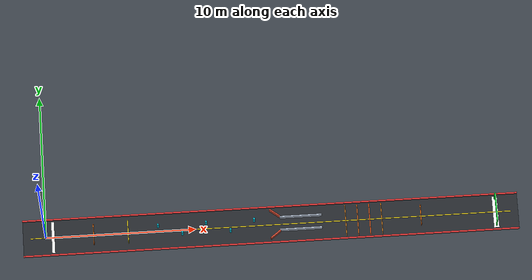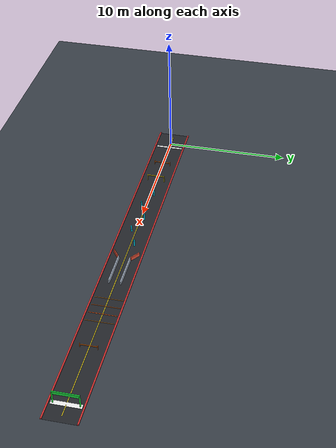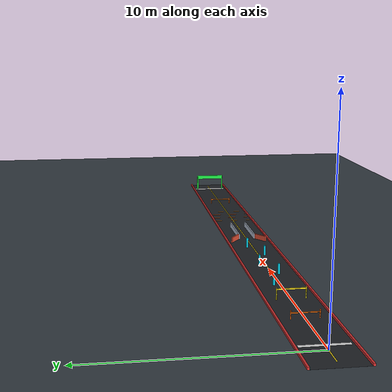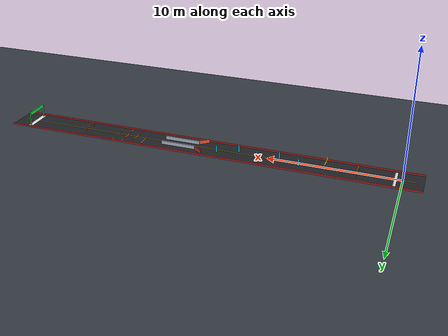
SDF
<?xml version="1.0" ?>
<sdf version="1.8">
  <world name="wobble_hurdle_course">
    <physics name="1ms" type="ignored">
      <max_step_size>0.001</max_step_size>
      <real_time_factor>1.0</real_time_factor>
    </physics>

    <!-- Essential Gazebo Harmonic plugins -->
    <plugin filename="gz-sim-physics-system" name="gz::sim::systems::Physics"/>
    <plugin filename="gz-sim-user-commands-system" name="gz::sim::systems::UserCommands"/>
    <plugin filename="gz-sim-scene-broadcaster-system" name="gz::sim::systems::SceneBroadcaster"/>
    <plugin filename="gz-sim-sensors-system" name="gz::sim::systems::Sensors">
      <render_engine>ogre2</render_engine>
    </plugin>

    <!-- Sun light -->
    <light type="directional" name="sun">
      <cast_shadows>true</cast_shadows>
      <pose>0 0 20 0 0 0</pose>
      <diffuse>0.9 0.9 0.9 1</diffuse>
      <specular>0.3 0.3 0.3 1</specular>
      <direction>-0.5 0.2 -0.8</direction>
    </light>

    <!-- Ground Plane -->
    <model name="ground_plane">
      <static>true</static>
      <link name="link">
        <collision name="collision">
          <geometry>
            <plane>
              <normal>0 0 1</normal>
              <size>120 120</size>
            </plane>
          </geometry>
          <surface>
            <friction>
              <ode>
                <mu>1.5</mu>
                <mu2>1.5</mu2>
              </ode>
            </friction>
          </surface>
        </collision>
        <visual name="visual">
          <geometry>
            <plane>
              <normal>0 0 1</normal>
              <size>120 120</size>
            </plane>
          </geometry>
          <material>
            <ambient>0.22 0.25 0.28 1</ambient>
            <diffuse>0.22 0.25 0.28 1</diffuse>
            <specular>0.1 0.1 0.1 1</specular>
          </material>
        </visual>
      </link>
    </model>

    <!-- Course Track Floor (32m x 2.4m asphalt championship lane) -->
    <model name="course_track">
      <static>true</static>
      <pose>15.0 0 0.001 0 0 0</pose>
      <link name="link">
        <visual name="track_surface">
          <geometry>
            <box><size>33.0 2.4 0.002</size></box>
          </geometry>
          <material>
            <ambient>0.14 0.15 0.17 1</ambient>
            <diffuse>0.14 0.15 0.17 1</diffuse>
          </material>
        </visual>
        <!-- Center guidance line (Yellow) -->
        <visual name="center_line">
          <pose>0 0 0.002 0 0 0</pose>
          <geometry>
            <box><size>32.0 0.06 0.002</size></box>
          </geometry>
          <material>
            <ambient>0.95 0.85 0.1 1</ambient>
            <diffuse>0.95 0.85 0.1 1</diffuse>
          </material>
        </visual>
        <!-- Start marker line -->
        <visual name="start_line">
          <pose>-14.5 0 0.002 0 0 0</pose>
          <geometry>
            <box><size>0.2 2.2 0.002</size></box>
          </geometry>
          <material>
            <ambient>0.9 0.9 0.9 1</ambient>
            <diffuse>0.9 0.9 0.9 1</diffuse>
          </material>
        </visual>
      </link>
    </model>

    <!-- Boundary Rails (Left & Right safety curbs) -->
    <model name="boundary_rails">
      <static>true</static>
      <link name="link">
        <collision name="rail_left_col">
          <pose>15.0 1.25 0.05 0 0 0</pose>
          <geometry><box><size>33.0 0.1 0.1</size></box></geometry>
        </collision>
        <visual name="rail_left_vis">
          <pose>15.0 1.25 0.05 0 0 0</pose>
          <geometry><box><size>33.0 0.1 0.1</size></box></geometry>
          <material>
            <ambient>0.85 0.2 0.2 1</ambient>
            <diffuse>0.85 0.2 0.2 1</diffuse>
          </material>
        </visual>
        <collision name="rail_right_col">
          <pose>15.0 -1.25 0.05 0 0 0</pose>
          <geometry><box><size>33.0 0.1 0.1</size></box></geometry>
        </collision>
        <visual name="rail_right_vis">
          <pose>15.0 -1.25 0.05 0 0 0</pose>
          <geometry><box><size>33.0 0.1 0.1</size></box></geometry>
          <material>
            <ambient>0.85 0.2 0.2 1</ambient>
            <diffuse>0.85 0.2 0.2 1</diffuse>
          </material>
        </visual>
      </link>
    </model>

    <!-- STAGE 2: Low-Clearance Overhead Hurdle 1 (X = 3.2m)                        -->
    <!-- Requires Deep Squat Posture (theta = -0.55 rad) to glide under 26.5cm bar -->
    <model name="hurdle_stage_1">
      <static>true</static>
      <link name="link">
        <!-- Left vertical post -->
        <collision name="post_left_col">
          <pose>3.2 0.65 0.20 0 0 0</pose>
          <geometry><cylinder><radius>0.025</radius><length>0.40</length></cylinder></geometry>
        </collision>
        <visual name="post_left_vis">
          <pose>3.2 0.65 0.20 0 0 0</pose>
          <geometry><cylinder><radius>0.025</radius><length>0.40</length></cylinder></geometry>
          <material><ambient>0.95 0.40 0.05 1</ambient><diffuse>0.95 0.40 0.05 1</diffuse></material>
        </visual>

        <!-- Right vertical post -->
        <collision name="post_right_col">
          <pose>3.2 -0.65 0.20 0 0 0</pose>
          <geometry><cylinder><radius>0.025</radius><length>0.40</length></cylinder></geometry>
        </collision>
        <visual name="post_right_vis">
          <pose>3.2 -0.65 0.20 0 0 0</pose>
          <geometry><cylinder><radius>0.025</radius><length>0.40</length></cylinder></geometry>
          <material><ambient>0.95 0.40 0.05 1</ambient><diffuse>0.95 0.40 0.05 1</diffuse></material>
        </visual>

        <!-- Overhead horizontal crossbar (lower edge at Z = 0.265m) -->
        <collision name="crossbar_col">
          <pose>3.2 0 0.285 0 0 0</pose>
          <geometry><box><size>0.05 1.35 0.04</size></box></geometry>
        </collision>
        <visual name="crossbar_vis">
          <pose>3.2 0 0.285 0 0 0</pose>
          <geometry><box><size>0.05 1.35 0.04</size></box></geometry>
          <material><ambient>0.98 0.45 0.05 1</ambient><diffuse>0.98 0.45 0.05 1</diffuse></material>
        </visual>
      </link>
    </model>

    <!-- STAGE 3: Elevated Standing Posture Speed Gate (X = 5.5m)                  -->
    <!-- Requires robot to rise back to full upright posture (theta = 0.0 rad)     -->
    <model name="speed_gate">
      <static>true</static>
      <link name="link">
        <!-- Left Post -->
        <collision name="sg_left_col">
          <pose>5.5 0.70 0.30 0 0 0</pose>
          <geometry><cylinder><radius>0.025</radius><length>0.60</length></cylinder></geometry>
        </collision>
        <visual name="sg_left_vis">
          <pose>5.5 0.70 0.30 0 0 0</pose>
          <geometry><cylinder><radius>0.025</radius><length>0.60</length></cylinder></geometry>
          <material><ambient>0.9 0.85 0.1 1</ambient><diffuse>0.9 0.85 0.1 1</diffuse></material>
        </visual>

        <!-- Right Post -->
        <collision name="sg_right_col">
          <pose>5.5 -0.70 0.30 0 0 0</pose>
          <geometry><cylinder><radius>0.025</radius><length>0.60</length></cylinder></geometry>
        </collision>
        <visual name="sg_right_vis">
          <pose>5.5 -0.70 0.30 0 0 0</pose>
          <geometry><cylinder><radius>0.025</radius><length>0.60</length></cylinder></geometry>
          <material><ambient>0.9 0.85 0.1 1</ambient><diffuse>0.9 0.85 0.1 1</diffuse></material>
        </visual>

        <!-- Elevated Yellow Header (Z = 0.50m) -->
        <visual name="sg_header_vis">
          <pose>5.5 0 0.52 0 0 0</pose>
          <geometry><box><size>0.06 1.45 0.06</size></box></geometry>
          <material><ambient>0.95 0.85 0.1 1</ambient><diffuse>0.95 0.85 0.1 1</diffuse></material>
        </visual>
      </link>
    </model>

    <!-- STAGE 4: 5-Gate Championship Slalom Arena (X = 7.0m to 15.0m)             -->
    <!-- 5 Cyan bollards spaced 1.6m apart alternating Y = +/- 0.32m               -->
    <!-- Bollard 1: X = 7.5m, Y = +0.32m (Pass to Right) -->
    <model name="slalom_bollard_1">
      <static>true</static>
      <pose>7.5 0.32 0.275 0 0 0</pose>
      <link name="link">
        <collision name="col"><geometry><cylinder><radius>0.06</radius><length>0.55</length></cylinder></geometry></collision>
        <visual name="vis">
          <geometry><cylinder><radius>0.06</radius><length>0.55</length></cylinder></geometry>
          <material><ambient>0.0 0.75 0.85 1</ambient><diffuse>0.0 0.75 0.85 1</diffuse></material>
        </visual>
      </link>
    </model>

    <!-- Bollard 2: X = 9.1m, Y = -0.32m (Pass to Left) -->
    <model name="slalom_bollard_2">
      <static>true</static>
      <pose>9.1 -0.32 0.275 0 0 0</pose>
      <link name="link">
        <collision name="col"><geometry><cylinder><radius>0.06</radius><length>0.55</length></cylinder></geometry></collision>
        <visual name="vis">
          <geometry><cylinder><radius>0.06</radius><length>0.55</length></cylinder></geometry>
          <material><ambient>0.0 0.75 0.85 1</ambient><diffuse>0.0 0.75 0.85 1</diffuse></material>
        </visual>
      </link>
    </model>

    <!-- Bollard 3: X = 10.7m, Y = +0.32m (Pass to Right) -->
    <model name="slalom_bollard_3">
      <static>true</static>
      <pose>10.7 0.32 0.275 0 0 0</pose>
      <link name="link">
        <collision name="col"><geometry><cylinder><radius>0.06</radius><length>0.55</length></cylinder></geometry></collision>
        <visual name="vis">
          <geometry><cylinder><radius>0.06</radius><length>0.55</length></cylinder></geometry>
          <material><ambient>0.0 0.75 0.85 1</ambient><diffuse>0.0 0.75 0.85 1</diffuse></material>
        </visual>
      </link>
    </model>

    <!-- Bollard 4: X = 12.3m, Y = -0.32m (Pass to Left) -->
    <model name="slalom_bollard_4">
      <static>true</static>
      <pose>12.3 -0.32 0.275 0 0 0</pose>
      <link name="link">
        <collision name="col"><geometry><cylinder><radius>0.06</radius><length>0.55</length></cylinder></geometry></collision>
        <visual name="vis">
          <geometry><cylinder><radius>0.06</radius><length>0.55</length></cylinder></geometry>
          <material><ambient>0.0 0.75 0.85 1</ambient><diffuse>0.0 0.75 0.85 1</diffuse></material>
        </visual>
      </link>
    </model>

    <!-- Bollard 5: X = 13.9m, Y = +0.32m (Pass to Right) -->
    <model name="slalom_bollard_5">
      <static>true</static>
      <pose>13.9 0.32 0.275 0 0 0</pose>
      <link name="link">
        <collision name="col"><geometry><cylinder><radius>0.06</radius><length>0.55</length></cylinder></geometry></collision>
        <visual name="vis">
          <geometry><cylinder><radius>0.06</radius><length>0.55</length></cylinder></geometry>
          <material><ambient>0.0 0.75 0.85 1</ambient><diffuse>0.0 0.75 0.85 1</diffuse></material>
        </visual>
      </link>
    </model>

    <!-- STAGE 5: Precision Canyon / Squeeze Corridor (X = 15.5m to 18.5m)        -->
    <!-- Tapered safety barriers narrowing to 0.90m corridor                       -->
    <model name="precision_canyon">
      <static>true</static>
      <link name="link">
        <!-- Left Straight Wall (Y = +0.45m, corridor width 0.90m) -->
        <collision name="canyon_l_col">
          <pose>17.0 0.45 0.15 0 0 0</pose>
          <geometry><box><size>2.8 0.08 0.30</size></box></geometry>
        </collision>
        <visual name="canyon_l_vis">
          <pose>17.0 0.45 0.15 0 0 0</pose>
          <geometry><box><size>2.8 0.08 0.30</size></box></geometry>
          <material><ambient>0.70 0.75 0.82 1</ambient><diffuse>0.70 0.75 0.82 1</diffuse></material>
        </visual>

        <!-- Right Straight Wall (Y = -0.45m) -->
        <collision name="canyon_r_col">
          <pose>17.0 -0.45 0.15 0 0 0</pose>
          <geometry><box><size>2.8 0.08 0.30</size></box></geometry>
        </collision>
        <visual name="canyon_r_vis">
          <pose>17.0 -0.45 0.15 0 0 0</pose>
          <geometry><box><size>2.8 0.08 0.30</size></box></geometry>
          <material><ambient>0.70 0.75 0.82 1</ambient><diffuse>0.70 0.75 0.82 1</diffuse></material>
        </visual>

        <!-- Left Entrance Funnel (X = 15.3, Y = +0.75 to +0.45) -->
        <collision name="funnel_l_col">
          <pose>15.3 0.75 0.15 0 0 -0.65</pose>
          <geometry><box><size>0.85 0.08 0.30</size></box></geometry>
        </collision>
        <visual name="funnel_l_vis">
          <pose>15.3 0.75 0.15 0 0 -0.65</pose>
          <geometry><box><size>0.85 0.08 0.30</size></box></geometry>
          <material><ambient>0.85 0.30 0.20 1</ambient><diffuse>0.85 0.30 0.20 1</diffuse></material>
        </visual>

        <!-- Right Entrance Funnel (X = 15.3, Y = -0.75 to -0.45) -->
        <collision name="funnel_r_col">
          <pose>15.3 -0.75 0.15 0 0 0.65</pose>
          <geometry><box><size>0.85 0.08 0.30</size></box></geometry>
        </collision>
        <visual name="funnel_r_vis">
          <pose>15.3 -0.75 0.15 0 0 0.65</pose>
          <geometry><box><size>0.85 0.08 0.30</size></box></geometry>
          <material><ambient>0.85 0.30 0.20 1</ambient><diffuse>0.85 0.30 0.20 1</diffuse></material>
        </visual>
      </link>
    </model>

    <!-- STAGE 6: Graded Multi-Frequency Speed Bumps (X = 19.8m to 22.8m)          -->
    <!-- 4 Graded Arched Bumps (6mm, 7mm, 8mm, 6mm) testing suspension compliance  -->
    <model name="speed_bumps">
      <static>true</static>
      <link name="link">
        <!-- Bump 1: X = 20.0m, height 6mm -->
        <collision name="bump1_col">
          <pose>20.0 0 -0.074 1.5707963 0 0</pose>
          <geometry><cylinder><radius>0.08</radius><length>2.2</length></cylinder></geometry>
          <surface><friction><ode><mu>1.5</mu><mu2>1.5</mu2></ode></friction></surface>
        </collision>
        <visual name="bump1_vis">
          <pose>20.0 0 -0.074 1.5707963 0 0</pose>
          <geometry><cylinder><radius>0.08</radius><length>2.2</length></cylinder></geometry>
          <material><ambient>0.85 0.50 0.1 1</ambient><diffuse>0.85 0.50 0.1 1</diffuse></material>
        </visual>

        <!-- Bump 2: X = 20.8m, height 7mm -->
        <collision name="bump2_col">
          <pose>20.8 0 -0.083 1.5707963 0 0</pose>
          <geometry><cylinder><radius>0.09</radius><length>2.2</length></cylinder></geometry>
          <surface><friction><ode><mu>1.5</mu><mu2>1.5</mu2></ode></friction></surface>
        </collision>
        <visual name="bump2_vis">
          <pose>20.8 0 -0.083 1.5707963 0 0</pose>
          <geometry><cylinder><radius>0.09</radius><length>2.2</length></cylinder></geometry>
          <material><ambient>0.85 0.40 0.1 1</ambient><diffuse>0.85 0.40 0.1 1</diffuse></material>
        </visual>

        <!-- Bump 3: X = 21.6m, height 8mm -->
        <collision name="bump3_col">
          <pose>21.6 0 -0.092 1.5707963 0 0</pose>
          <geometry><cylinder><radius>0.10</radius><length>2.2</length></cylinder></geometry>
          <surface><friction><ode><mu>1.5</mu><mu2>1.5</mu2></ode></friction></surface>
        </collision>
        <visual name="bump3_vis">
          <pose>21.6 0 -0.092 1.5707963 0 0</pose>
          <geometry><cylinder><radius>0.10</radius><length>2.2</length></cylinder></geometry>
          <material><ambient>0.90 0.35 0.1 1</ambient><diffuse>0.90 0.35 0.1 1</diffuse></material>
        </visual>

        <!-- Bump 4: X = 22.4m, height 6mm -->
        <collision name="bump4_col">
          <pose>22.4 0 -0.074 1.5707963 0 0</pose>
          <geometry><cylinder><radius>0.08</radius><length>2.2</length></cylinder></geometry>
          <surface><friction><ode><mu>1.5</mu><mu2>1.5</mu2></ode></friction></surface>
        </collision>
        <visual name="bump4_vis">
          <pose>22.4 0 -0.074 1.5707963 0 0</pose>
          <geometry><cylinder><radius>0.08</radius><length>2.2</length></cylinder></geometry>
          <material><ambient>0.85 0.50 0.1 1</ambient><diffuse>0.85 0.50 0.1 1</diffuse></material>
        </visual>
      </link>
    </model>

    <!-- STAGE 7: Low Overhead Hurdle 2 (Double Squat Challenge!) (X = 25.0m)       -->
    <!-- Requires robot to perform second deep squat after bumpy terrain           -->
    <model name="hurdle_stage_2">
      <static>true</static>
      <link name="link">
        <!-- Left vertical post -->
        <collision name="h2_post_left_col">
          <pose>25.0 0.65 0.20 0 0 0</pose>
          <geometry><cylinder><radius>0.025</radius><length>0.40</length></cylinder></geometry>
        </collision>
        <visual name="h2_post_left_vis">
          <pose>25.0 0.65 0.20 0 0 0</pose>
          <geometry><cylinder><radius>0.025</radius><length>0.40</length></cylinder></geometry>
          <material><ambient>0.95 0.40 0.05 1</ambient><diffuse>0.95 0.40 0.05 1</diffuse></material>
        </visual>

        <!-- Right vertical post -->
        <collision name="h2_post_right_col">
          <pose>25.0 -0.65 0.20 0 0 0</pose>
          <geometry><cylinder><radius>0.025</radius><length>0.40</length></cylinder></geometry>
        </collision>
        <visual name="h2_post_right_vis">
          <pose>25.0 -0.65 0.20 0 0 0</pose>
          <geometry><cylinder><radius>0.025</radius><length>0.40</length></cylinder></geometry>
          <material><ambient>0.95 0.40 0.05 1</ambient><diffuse>0.95 0.40 0.05 1</diffuse></material>
        </visual>

        <!-- Overhead horizontal crossbar (lower edge at Z = 0.265m) -->
        <collision name="h2_crossbar_col">
          <pose>25.0 0 0.285 0 0 0</pose>
          <geometry><box><size>0.05 1.35 0.04</size></box></geometry>
        </collision>
        <visual name="h2_crossbar_vis">
          <pose>25.0 0 0.285 0 0 0</pose>
          <geometry><box><size>0.05 1.35 0.04</size></box></geometry>
          <material><ambient>0.98 0.45 0.05 1</ambient><diffuse>0.98 0.45 0.05 1</diffuse></material>
        </visual>
      </link>
    </model>

    <!-- STAGE 8: Grand Sprint & Championship Finish Arch (X = 30.0m)              -->
    <!-- Checkered finish line and monumental green victory portal                 -->
    <model name="championship_finish_arch">
      <static>true</static>
      <link name="link">
        <!-- Finish Line Bar (Checkered/White, X = 30.0m) -->
        <visual name="finish_line_vis">
          <pose>30.0 0 0.003 0 0 0</pose>
          <geometry><box><size>0.35 2.2 0.002</size></box></geometry>
          <material><ambient>0.95 0.95 0.95 1</ambient><diffuse>0.95 0.95 0.95 1</diffuse></material>
        </visual>

        <!-- Left Pillar -->
        <collision name="fa_left_col">
          <pose>30.0 0.95 0.50 0 0 0</pose>
          <geometry><cylinder><radius>0.05</radius><length>1.0</length></cylinder></geometry>
        </collision>
        <visual name="fa_left_vis">
          <pose>30.0 0.95 0.50 0 0 0</pose>
          <geometry><cylinder><radius>0.05</radius><length>1.0</length></cylinder></geometry>
          <material><ambient>0.1 0.85 0.2 1</ambient><diffuse>0.1 0.85 0.2 1</diffuse></material>
        </visual>

        <!-- Right Pillar -->
        <collision name="fa_right_col">
          <pose>30.0 -0.95 0.50 0 0 0</pose>
          <geometry><cylinder><radius>0.05</radius><length>1.0</length></cylinder></geometry>
        </collision>
        <visual name="fa_right_vis">
          <pose>30.0 -0.95 0.50 0 0 0</pose>
          <geometry><cylinder><radius>0.05</radius><length>1.0</length></cylinder></geometry>
          <material><ambient>0.1 0.85 0.2 1</ambient><diffuse>0.1 0.85 0.2 1</diffuse></material>
        </visual>

        <!-- Grand Overhead Banner (X = 30.0m, Z = 0.95m) -->
        <collision name="fa_banner_col">
          <pose>30.0 0 0.95 0 0 0</pose>
          <geometry><box><size>0.08 1.95 0.25</size></box></geometry>
        </collision>
        <visual name="fa_banner_vis">
          <pose>30.0 0 0.95 0 0 0</pose>
          <geometry><box><size>0.08 1.95 0.25</size></box></geometry>
          <material><ambient>0.1 0.88 0.25 1</ambient><diffuse>0.1 0.88 0.25 1</diffuse></material>
        </visual>
      </link>
    </model>

  </world>
</sdf>
